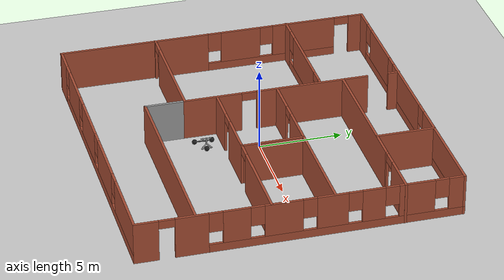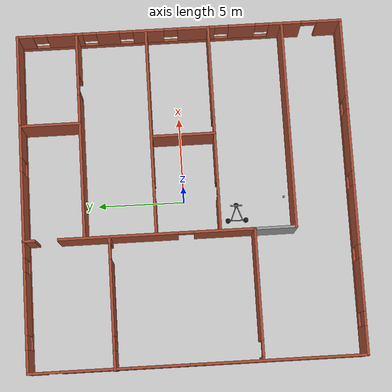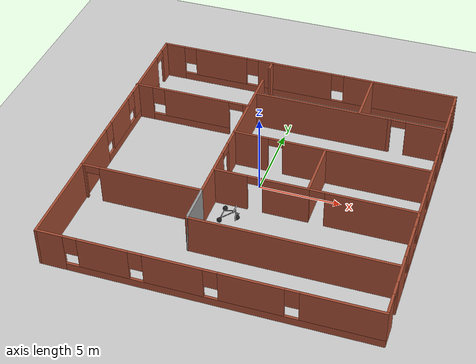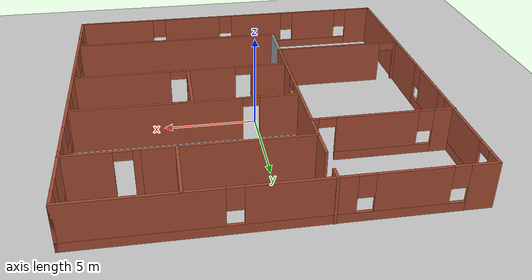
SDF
<sdf version="1.7">
 <world name="default">
  <model name="ground_plane">
   <static>1</static>
   <link name="link">
    <collision name="collision">
     <geometry><plane><normal>0 0 1</normal><size>100 100</size></plane></geometry>
     <surface>
      <contact><collide_bitmask>65535</collide_bitmask></contact>
      <friction><ode><mu>100</mu><mu2>50</mu2></ode></friction>
     </surface>
    </collision>
    <visual name="visual">
     <cast_shadows>0</cast_shadows>
     <geometry><plane><normal>0 0 1</normal><size>100 100</size></plane></geometry>
     <material>
      <script><uri>file://media/materials/scripts/gazebo.material</uri><name>Gazebo/Grey</name></script>
     </material>
    </visual>
   </link>
  </model>
  <model name="Robo_house">
   <pose>0.166 -0.2695 0 0 -0 0</pose>
   <link name="Wall_15">
    <pose>0.017 -9.4375 0 0 -0 0</pose>
    <visual name="Wall_15_Visual_0">
     <pose>-8.91507 0 1.25 0 -0 0</pose>
     <geometry><box><size>1.66987 0.15 2.5</size></box></geometry>
     <material>
      <script><uri>file://media/materials/scripts/gazebo.material</uri><name>Gazebo/Bricks</name></script>
      <ambient>1 1 1 1</ambient>
     </material>
     <meta><layer>0</layer></meta>
    </visual>
    <collision name="Wall_15_Collision_0">
     <geometry><box><size>1.66987 0.15 2.5</size></box></geometry>
     <pose>-8.91507 0 1.25 0 -0 0</pose>
    </collision>
    <visual name="Wall_15_Visual_1">
     <pose>0.834934 0 0.25 0 -0 0</pose>
     <geometry><box><size>17.8301 0.15 0.5</size></box></geometry>
     <material>
      <script><uri>file://media/materials/scripts/gazebo.material</uri><name>Gazebo/Bricks</name></script>
      <ambient>1 1 1 1</ambient>
     </material>
     <meta><layer>0</layer></meta>
    </visual>
    <collision name="Wall_15_Collision_1">
     <geometry><box><size>17.8301 0.15 0.5</size></box></geometry>
     <pose>0.834934 0 0.25 0 -0 0</pose>
    </collision>
    <visual name="Wall_15_Visual_2">
     <pose>-5.79807 0 1.5 0 -0 0</pose>
     <geometry><box><size>2.96413 0.15 2</size></box></geometry>
     <material>
      <script><uri>file://media/materials/scripts/gazebo.material</uri><name>Gazebo/Bricks</name></script>
      <ambient>1 1 1 1</ambient>
     </material>
     <meta><layer>0</layer></meta>
    </visual>
    <collision name="Wall_15_Collision_2">
     <geometry><box><size>2.96413 0.15 2</size></box></geometry>
     <pose>-5.79807 0 1.5 0 -0 0</pose>
    </collision>
    <visual name="Wall_15_Visual_3">
     <pose>-1.80528 0 1.5 0 -0 0</pose>
     <geometry><box><size>3.42145 0.15 2</size></box></geometry>
     <material>
      <script><uri>file://media/materials/scripts/gazebo.material</uri><name>Gazebo/Bricks</name></script>
      <ambient>1 1 1 1</ambient>
     </material>
     <meta><layer>0</layer></meta>
    </visual>
    <collision name="Wall_15_Collision_3">
     <geometry><box><size>3.42145 0.15 2</size></box></geometry>
     <pose>-1.80528 0 1.5 0 -0 0</pose>
    </collision>
    <visual name="Wall_15_Visual_4">
     <pose>2.52171 0 1.5 0 -0 0</pose>
     <geometry><box><size>3.63252 0.15 2</size></box></geometry>
     <material>
      <script><uri>file://media/materials/scripts/gazebo.material</uri><name>Gazebo/Bricks</name></script>
      <ambient>1 1 1 1</ambient>
     </material>
     <meta><layer>0</layer></meta>
    </visual>
    <collision name="Wall_15_Collision_4">
     <geometry><box><size>3.63252 0.15 2</size></box></geometry>
     <pose>2.52171 0 1.5 0 -0 0</pose>
    </collision>
    <visual name="Wall_15_Visual_5">
     <pose>7.44398 0 1.5 0 -0 0</pose>
     <geometry><box><size>4.61203 0.15 2</size></box></geometry>
     <material>
      <script><uri>file://media/materials/scripts/gazebo.material</uri><name>Gazebo/Bricks</name></script>
      <ambient>1 1 1 1</ambient>
     </material>
     <meta><layer>0</layer></meta>
    </visual>
    <collision name="Wall_15_Collision_5">
     <geometry><box><size>4.61203 0.15 2</size></box></geometry>
     <pose>7.44398 0 1.5 0 -0 0</pose>
    </collision>
    <visual name="Wall_15_Visual_6">
     <pose>-7.68013 0 1.9 0 -0 0</pose>
     <geometry><box><size>0.8 0.15 1.2</size></box></geometry>
     <material>
      <script><uri>file://media/materials/scripts/gazebo.material</uri><name>Gazebo/Bricks</name></script>
      <ambient>1 1 1 1</ambient>
     </material>
     <meta><layer>0</layer></meta>
    </visual>
    <collision name="Wall_15_Collision_6">
     <geometry><box><size>0.8 0.15 1.2</size></box></geometry>
     <pose>-7.68013 0 1.9 0 -0 0</pose>
    </collision>
    <visual name="Wall_15_Visual_7">
     <pose>-3.91601 0 1.9 0 -0 0</pose>
     <geometry><box><size>0.8 0.15 1.2</size></box></geometry>
     <material>
      <script><uri>file://media/materials/scripts/gazebo.material</uri><name>Gazebo/Bricks</name></script>
      <ambient>1 1 1 1</ambient>
     </material>
     <meta><layer>0</layer></meta>
    </visual>
    <collision name="Wall_15_Collision_7">
     <geometry><box><size>0.8 0.15 1.2</size></box></geometry>
     <pose>-3.91601 0 1.9 0 -0 0</pose>
    </collision>
    <visual name="Wall_15_Visual_8">
     <pose>0.305447 0 1.9 0 -0 0</pose>
     <geometry><box><size>0.8 0.15 1.2</size></box></geometry>
     <material>
      <script><uri>file://media/materials/scripts/gazebo.material</uri><name>Gazebo/Bricks</name></script>
      <ambient>1 1 1 1</ambient>
     </material>
     <meta><layer>0</layer></meta>
    </visual>
    <collision name="Wall_15_Collision_8">
     <geometry><box><size>0.8 0.15 1.2</size></box></geometry>
     <pose>0.305447 0 1.9 0 -0 0</pose>
    </collision>
    <visual name="Wall_15_Visual_9">
     <pose>4.73797 0 1.9 0 -0 0</pose>
     <geometry><box><size>0.8 0.15 1.2</size></box></geometry>
     <material>
      <script><uri>file://media/materials/scripts/gazebo.material</uri><name>Gazebo/Bricks</name></script>
      <ambient>1 1 1 1</ambient>
     </material>
     <meta><layer>0</layer></meta>
    </visual>
    <collision name="Wall_15_Collision_9">
     <geometry><box><size>0.8 0.15 1.2</size></box></geometry>
     <pose>4.73797 0 1.9 0 -0 0</pose>
    </collision>
   </link>
   <link name="Wall_16">
    <pose>9.692 -0.0125 0 0 -0 1.5708</pose>
    <visual name="Wall_16_Visual_0">
     <pose>-8.77922 0 1.25 0 -0 0</pose>
     <geometry><box><size>1.44155 0.15 2.5</size></box></geometry>
     <material>
      <script><uri>file://media/materials/scripts/gazebo.material</uri><name>Gazebo/Bricks</name></script>
      <ambient>1 1 1 1</ambient>
     </material>
     <meta><layer>0</layer></meta>
    </visual>
    <collision name="Wall_16_Collision_0">
     <geometry><box><size>1.44155 0.15 2.5</size></box></geometry>
     <pose>-8.77922 0 1.25 0 -0 0</pose>
    </collision>
    <visual name="Wall_16_Visual_1">
     <pose>-6.20712 0 1.25 0 -0 0</pose>
     <geometry><box><size>1.90264 0.15 2.5</size></box></geometry>
     <material>
      <script><uri>file://media/materials/scripts/gazebo.material</uri><name>Gazebo/Bricks</name></script>
      <ambient>1 1 1 1</ambient>
     </material>
     <meta><layer>0</layer></meta>
    </visual>
    <collision name="Wall_16_Collision_1">
     <geometry><box><size>1.90264 0.15 2.5</size></box></geometry>
     <pose>-6.20712 0 1.25 0 -0 0</pose>
    </collision>
    <visual name="Wall_16_Visual_2">
     <pose>2.1221 0 0.25 0 -0 0</pose>
     <geometry><box><size>14.7558 0.15 0.5</size></box></geometry>
     <material>
      <script><uri>file://media/materials/scripts/gazebo.material</uri><name>Gazebo/Bricks</name></script>
      <ambient>1 1 1 1</ambient>
     </material>
     <meta><layer>0</layer></meta>
    </visual>
    <collision name="Wall_16_Collision_2">
     <geometry><box><size>14.7558 0.15 0.5</size></box></geometry>
     <pose>2.1221 0 0.25 0 -0 0</pose>
    </collision>
    <visual name="Wall_16_Visual_3">
     <pose>-3.67427 0 1.5 0 -0 0</pose>
     <geometry><box><size>1.56306 0.15 2</size></box></geometry>
     <material>
      <script><uri>file://media/materials/scripts/gazebo.material</uri><name>Gazebo/Bricks</name></script>
      <ambient>1 1 1 1</ambient>
     </material>
     <meta><layer>0</layer></meta>
    </visual>
    <collision name="Wall_16_Collision_3">
     <geometry><box><size>1.56306 0.15 2</size></box></geometry>
     <pose>-3.67427 0 1.5 0 -0 0</pose>
    </collision>
    <visual name="Wall_16_Visual_4">
     <pose>-1.00069 0 1.5 0 -0 0</pose>
     <geometry><box><size>2.18411 0.15 2</size></box></geometry>
     <material>
      <script><uri>file://media/materials/scripts/gazebo.material</uri><name>Gazebo/Bricks</name></script>
      <ambient>1 1 1 1</ambient>
     </material>
     <meta><layer>0</layer></meta>
    </visual>
    <collision name="Wall_16_Collision_4">
     <geometry><box><size>2.18411 0.15 2</size></box></geometry>
     <pose>-1.00069 0 1.5 0 -0 0</pose>
    </collision>
    <visual name="Wall_16_Visual_5">
     <pose>1.79027 0 1.5 0 -0 0</pose>
     <geometry><box><size>1.79781 0.15 2</size></box></geometry>
     <material>
      <script><uri>file://media/materials/scripts/gazebo.material</uri><name>Gazebo/Bricks</name></script>
      <ambient>1 1 1 1</ambient>
     </material>
     <meta><layer>0</layer></meta>
    </visual>
    <collision name="Wall_16_Collision_5">
     <geometry><box><size>1.79781 0.15 2</size></box></geometry>
     <pose>1.79027 0 1.5 0 -0 0</pose>
    </collision>
    <visual name="Wall_16_Visual_6">
     <pose>4.15524 0 1.5 0 -0 0</pose>
     <geometry><box><size>1.33214 0.15 2</size></box></geometry>
     <material>
      <script><uri>file://media/materials/scripts/gazebo.material</uri><name>Gazebo/Bricks</name></script>
      <ambient>1 1 1 1</ambient>
     </material>
     <meta><layer>0</layer></meta>
    </visual>
    <collision name="Wall_16_Collision_6">
     <geometry><box><size>1.33214 0.15 2</size></box></geometry>
     <pose>4.15524 0 1.5 0 -0 0</pose>
    </collision>
    <visual name="Wall_16_Visual_7">
     <pose>6.66355 0 1.5 0 -0 0</pose>
     <geometry><box><size>2.08446 0.15 2</size></box></geometry>
     <material>
      <script><uri>file://media/materials/scripts/gazebo.material</uri><name>Gazebo/Bricks</name></script>
      <ambient>1 1 1 1</ambient>
     </material>
     <meta><layer>0</layer></meta>
    </visual>
    <collision name="Wall_16_Collision_7">
     <geometry><box><size>2.08446 0.15 2</size></box></geometry>
     <pose>6.66355 0 1.5 0 -0 0</pose>
    </collision>
    <visual name="Wall_16_Visual_8">
     <pose>9.00289 0 1.5 0 -0 0</pose>
     <geometry><box><size>0.99422 0.15 2</size></box></geometry>
     <material>
      <script><uri>file://media/materials/scripts/gazebo.material</uri><name>Gazebo/Bricks</name></script>
      <ambient>1 1 1 1</ambient>
     </material>
     <meta><layer>0</layer></meta>
    </visual>
    <collision name="Wall_16_Collision_8">
     <geometry><box><size>0.99422 0.15 2</size></box></geometry>
     <pose>9.00289 0 1.5 0 -0 0</pose>
    </collision>
    <visual name="Wall_16_Visual_9">
     <pose>-4.8558 0 1.9 0 -0 0</pose>
     <geometry><box><size>0.8 0.15 1.2</size></box></geometry>
     <material>
      <script><uri>file://media/materials/scripts/gazebo.material</uri><name>Gazebo/Bricks</name></script>
      <ambient>1 1 1 1</ambient>
     </material>
     <meta><layer>0</layer></meta>
    </visual>
    <collision name="Wall_16_Collision_9">
     <geometry><box><size>0.8 0.15 1.2</size></box></geometry>
     <pose>-4.8558 0 1.9 0 -0 0</pose>
    </collision>
    <visual name="Wall_16_Visual_10">
     <pose>-2.49274 0 1.9 0 -0 0</pose>
     <geometry><box><size>0.8 0.15 1.2</size></box></geometry>
     <material>
      <script><uri>file://media/materials/scripts/gazebo.material</uri><name>Gazebo/Bricks</name></script>
      <ambient>1 1 1 1</ambient>
     </material>
     <meta><layer>0</layer></meta>
    </visual>
    <collision name="Wall_16_Collision_10">
     <geometry><box><size>0.8 0.15 1.2</size></box></geometry>
     <pose>-2.49274 0 1.9 0 -0 0</pose>
    </collision>
    <visual name="Wall_16_Visual_11">
     <pose>0.491371 0 1.9 0 -0 0</pose>
     <geometry><box><size>0.8 0.15 1.2</size></box></geometry>
     <material>
      <script><uri>file://media/materials/scripts/gazebo.material</uri><name>Gazebo/Bricks</name></script>
      <ambient>1 1 1 1</ambient>
     </material>
     <meta><layer>0</layer></meta>
    </visual>
    <collision name="Wall_16_Collision_11">
     <geometry><box><size>0.8 0.15 1.2</size></box></geometry>
     <pose>0.491371 0 1.9 0 -0 0</pose>
    </collision>
    <visual name="Wall_16_Visual_12">
     <pose>3.08918 0 1.9 0 -0 0</pose>
     <geometry><box><size>0.8 0.15 1.2</size></box></geometry>
     <material>
      <script><uri>file://media/materials/scripts/gazebo.material</uri><name>Gazebo/Bricks</name></script>
      <ambient>1 1 1 1</ambient>
     </material>
     <meta><layer>0</layer></meta>
    </visual>
    <collision name="Wall_16_Collision_12">
     <geometry><box><size>0.8 0.15 1.2</size></box></geometry>
     <pose>3.08918 0 1.9 0 -0 0</pose>
    </collision>
    <visual name="Wall_16_Visual_13">
     <pose>5.22131 0 1.9 0 -0 0</pose>
     <geometry><box><size>0.8 0.15 1.2</size></box></geometry>
     <material>
      <script><uri>file://media/materials/scripts/gazebo.material</uri><name>Gazebo/Bricks</name></script>
      <ambient>1 1 1 1</ambient>
     </material>
     <meta><layer>0</layer></meta>
    </visual>
    <collision name="Wall_16_Collision_13">
     <geometry><box><size>0.8 0.15 1.2</size></box></geometry>
     <pose>5.22131 0 1.9 0 -0 0</pose>
    </collision>
    <visual name="Wall_16_Visual_14">
     <pose>8.10578 0 1.9 0 -0 0</pose>
     <geometry><box><size>0.8 0.15 1.2</size></box></geometry>
     <material>
      <script><uri>file://media/materials/scripts/gazebo.material</uri><name>Gazebo/Bricks</name></script>
      <ambient>1 1 1 1</ambient>
     </material>
     <meta><layer>0</layer></meta>
    </visual>
    <collision name="Wall_16_Collision_14">
     <geometry><box><size>0.8 0.15 1.2</size></box></geometry>
     <pose>8.10578 0 1.9 0 -0 0</pose>
    </collision>
    <visual name="Wall_16_Visual_15">
     <pose>-7.60845 0 2.25 0 -0 0</pose>
     <geometry><box><size>0.9 0.15 0.5</size></box></geometry>
     <material>
      <script><uri>file://media/materials/scripts/gazebo.material</uri><name>Gazebo/Bricks</name></script>
      <ambient>1 1 1 1</ambient>
     </material>
     <meta><layer>0</layer></meta>
    </visual>
    <collision name="Wall_16_Collision_15">
     <geometry><box><size>0.9 0.15 0.5</size></box></geometry>
     <pose>-7.60845 0 2.25 0 -0 0</pose>
    </collision>
   </link>
   <link name="Wall_20">
    <pose>-9.658 -0.0125 0 0 -0 1.5708</pose>
    <visual name="Wall_20_Visual_0">
     <pose>-4.92846 0 1.25 0 -0 0</pose>
     <geometry><box><size>9.14308 0.15 2.5</size></box></geometry>
     <material>
      <script><uri>file://media/materials/scripts/gazebo.material</uri><name>Gazebo/Bricks</name></script>
      <ambient>1 1 1 1</ambient>
     </material>
     <meta><layer>0</layer></meta>
    </visual>
    <collision name="Wall_20_Collision_0">
     <geometry><box><size>9.14308 0.15 2.5</size></box></geometry>
     <pose>-4.92846 0 1.25 0 -0 0</pose>
    </collision>
    <visual name="Wall_20_Visual_1">
     <pose>9.02608 0 1.25 0 -0 0</pose>
     <geometry><box><size>0.947833 0.15 2.5</size></box></geometry>
     <material>
      <script><uri>file://media/materials/scripts/gazebo.material</uri><name>Gazebo/Bricks</name></script>
      <ambient>1 1 1 1</ambient>
     </material>
     <meta><layer>0</layer></meta>
    </visual>
    <collision name="Wall_20_Collision_1">
     <geometry><box><size>0.947833 0.15 2.5</size></box></geometry>
     <pose>9.02608 0 1.25 0 -0 0</pose>
    </collision>
    <visual name="Wall_20_Visual_2">
     <pose>3.64762 0 0.25 0 -0 0</pose>
     <geometry><box><size>8.00909 0.15 0.5</size></box></geometry>
     <material>
      <script><uri>file://media/materials/scripts/gazebo.material</uri><name>Gazebo/Bricks</name></script>
      <ambient>1 1 1 1</ambient>
     </material>
     <meta><layer>0</layer></meta>
    </visual>
    <collision name="Wall_20_Collision_2">
     <geometry><box><size>8.00909 0.15 0.5</size></box></geometry>
     <pose>3.64762 0 0.25 0 -0 0</pose>
    </collision>
    <visual name="Wall_20_Visual_3">
     <pose>1.67438 0 1.5 0 -0 0</pose>
     <geometry><box><size>2.46259 0.15 2</size></box></geometry>
     <material>
      <script><uri>file://media/materials/scripts/gazebo.material</uri><name>Gazebo/Bricks</name></script>
      <ambient>1 1 1 1</ambient>
     </material>
     <meta><layer>0</layer></meta>
    </visual>
    <collision name="Wall_20_Collision_3">
     <geometry><box><size>2.46259 0.15 2</size></box></geometry>
     <pose>1.67438 0 1.5 0 -0 0</pose>
    </collision>
    <visual name="Wall_20_Visual_4">
     <pose>5.67892 0 1.5 0 -0 0</pose>
     <geometry><box><size>3.9465 0.15 2</size></box></geometry>
     <material>
      <script><uri>file://media/materials/scripts/gazebo.material</uri><name>Gazebo/Bricks</name></script>
      <ambient>1 1 1 1</ambient>
     </material>
     <meta><layer>0</layer></meta>
    </visual>
    <collision name="Wall_20_Collision_4">
     <geometry><box><size>3.9465 0.15 2</size></box></geometry>
     <pose>5.67892 0 1.5 0 -0 0</pose>
    </collision>
    <visual name="Wall_20_Visual_5">
     <pose>0.04308 0 1.9 0 -0 0</pose>
     <geometry><box><size>0.8 0.15 1.2</size></box></geometry>
     <material>
      <script><uri>file://media/materials/scripts/gazebo.material</uri><name>Gazebo/Bricks</name></script>
      <ambient>1 1 1 1</ambient>
     </material>
     <meta><layer>0</layer></meta>
    </visual>
    <collision name="Wall_20_Collision_5">
     <geometry><box><size>0.8 0.15 1.2</size></box></geometry>
     <pose>0.04308 0 1.9 0 -0 0</pose>
    </collision>
    <visual name="Wall_20_Visual_6">
     <pose>3.30567 0 1.9 0 -0 0</pose>
     <geometry><box><size>0.8 0.15 1.2</size></box></geometry>
     <material>
      <script><uri>file://media/materials/scripts/gazebo.material</uri><name>Gazebo/Bricks</name></script>
      <ambient>1 1 1 1</ambient>
     </material>
     <meta><layer>0</layer></meta>
    </visual>
    <collision name="Wall_20_Collision_6">
     <geometry><box><size>0.8 0.15 1.2</size></box></geometry>
     <pose>3.30567 0 1.9 0 -0 0</pose>
    </collision>
    <visual name="Wall_20_Visual_7">
     <pose>8.10217 0 2.25 0 -0 0</pose>
     <geometry><box><size>0.9 0.15 0.5</size></box></geometry>
     <material>
      <script><uri>file://media/materials/scripts/gazebo.material</uri><name>Gazebo/Bricks</name></script>
      <ambient>1 1 1 1</ambient>
     </material>
     <meta><layer>0</layer></meta>
    </visual>
    <collision name="Wall_20_Collision_7">
     <geometry><box><size>0.9 0.15 0.5</size></box></geometry>
     <pose>8.10217 0 2.25 0 -0 0</pose>
    </collision>
   </link>
   <link name="Wall_21">
    <pose>0.017 9.4125 0 0 -0 0</pose>
    <visual name="Wall_21_Visual_0">
     <pose>-9.05411 0 1.25 0 -0 0</pose>
     <geometry><box><size>1.39177 0.15 2.5</size></box></geometry>
     <material>
      <script><uri>file://media/materials/scripts/gazebo.material</uri><name>Gazebo/Bricks</name></script>
      <ambient>1 1 1 1</ambient>
     </material>
     <meta><layer>0</layer></meta>
    </visual>
    <collision name="Wall_21_Collision_0">
     <geometry><box><size>1.39177 0.15 2.5</size></box></geometry>
     <pose>-9.05411 0 1.25 0 -0 0</pose>
    </collision>
    <visual name="Wall_21_Visual_1">
     <pose>0.695886 0 0.25 0 -0 0</pose>
     <geometry><box><size>18.1082 0.15 0.5</size></box></geometry>
     <material>
      <script><uri>file://media/materials/scripts/gazebo.material</uri><name>Gazebo/Bricks</name></script>
      <ambient>1 1 1 1</ambient>
     </material>
     <meta><layer>0</layer></meta>
    </visual>
    <collision name="Wall_21_Collision_1">
     <geometry><box><size>18.1082 0.15 0.5</size></box></geometry>
     <pose>0.695886 0 0.25 0 -0 0</pose>
    </collision>
    <visual name="Wall_21_Visual_2">
     <pose>-5.79711 0 1.5 0 -0 0</pose>
     <geometry><box><size>3.52224 0.15 2</size></box></geometry>
     <material>
      <script><uri>file://media/materials/scripts/gazebo.material</uri><name>Gazebo/Bricks</name></script>
      <ambient>1 1 1 1</ambient>
     </material>
     <meta><layer>0</layer></meta>
    </visual>
    <collision name="Wall_21_Collision_2">
     <geometry><box><size>3.52224 0.15 2</size></box></geometry>
     <pose>-5.79711 0 1.5 0 -0 0</pose>
    </collision>
    <visual name="Wall_21_Visual_3">
     <pose>-0.763639 0 1.5 0 -0 0</pose>
     <geometry><box><size>4.94469 0.15 2</size></box></geometry>
     <material>
      <script><uri>file://media/materials/scripts/gazebo.material</uri><name>Gazebo/Bricks</name></script>
      <ambient>1 1 1 1</ambient>
     </material>
     <meta><layer>0</layer></meta>
    </visual>
    <collision name="Wall_21_Collision_3">
     <geometry><box><size>4.94469 0.15 2</size></box></geometry>
     <pose>-0.763639 0 1.5 0 -0 0</pose>
    </collision>
    <visual name="Wall_21_Visual_4">
     <pose>6.12935 0 1.5 0 -0 0</pose>
     <geometry><box><size>7.24129 0.15 2</size></box></geometry>
     <material>
      <script><uri>file://media/materials/scripts/gazebo.material</uri><name>Gazebo/Bricks</name></script>
      <ambient>1 1 1 1</ambient>
     </material>
     <meta><layer>0</layer></meta>
    </visual>
    <collision name="Wall_21_Collision_4">
     <geometry><box><size>7.24129 0.15 2</size></box></geometry>
     <pose>6.12935 0 1.5 0 -0 0</pose>
    </collision>
    <visual name="Wall_21_Visual_5">
     <pose>-7.95823 0 1.9 0 -0 0</pose>
     <geometry><box><size>0.8 0.15 1.2</size></box></geometry>
     <material>
      <script><uri>file://media/materials/scripts/gazebo.material</uri><name>Gazebo/Bricks</name></script>
      <ambient>1 1 1 1</ambient>
     </material>
     <meta><layer>0</layer></meta>
    </visual>
    <collision name="Wall_21_Collision_5">
     <geometry><box><size>0.8 0.15 1.2</size></box></geometry>
     <pose>-7.95823 0 1.9 0 -0 0</pose>
    </collision>
    <visual name="Wall_21_Visual_6">
     <pose>-3.63598 0 1.9 0 -0 0</pose>
     <geometry><box><size>0.8 0.15 1.2</size></box></geometry>
     <material>
      <script><uri>file://media/materials/scripts/gazebo.material</uri><name>Gazebo/Bricks</name></script>
      <ambient>1 1 1 1</ambient>
     </material>
     <meta><layer>0</layer></meta>
    </visual>
    <collision name="Wall_21_Collision_6">
     <geometry><box><size>0.8 0.15 1.2</size></box></geometry>
     <pose>-3.63598 0 1.9 0 -0 0</pose>
    </collision>
    <visual name="Wall_21_Visual_7">
     <pose>2.10871 0 1.9 0 -0 0</pose>
     <geometry><box><size>0.8 0.15 1.2</size></box></geometry>
     <material>
      <script><uri>file://media/materials/scripts/gazebo.material</uri><name>Gazebo/Bricks</name></script>
      <ambient>1 1 1 1</ambient>
     </material>
     <meta><layer>0</layer></meta>
    </visual>
    <collision name="Wall_21_Collision_7">
     <geometry><box><size>0.8 0.15 1.2</size></box></geometry>
     <pose>2.10871 0 1.9 0 -0 0</pose>
    </collision>
   </link>
   <link name="Wall_23">
    <pose>-5.961 -3.6535 0 0 -0 0</pose>
    <visual name="Wall_23_Visual_0">
     <pose>-3.62205 0 1.25 0 -0 0</pose>
     <geometry><box><size>0.255896 0.15 2.5</size></box></geometry>
     <material>
      <script><uri>file://media/materials/scripts/gazebo.material</uri><name>Gazebo/Bricks</name></script>
      <ambient>1 1 1 1</ambient>
     </material>
     <meta><layer>0</layer></meta>
    </visual>
    <collision name="Wall_23_Collision_0">
     <geometry><box><size>0.255896 0.15 2.5</size></box></geometry>
     <pose>-3.62205 0 1.25 0 -0 0</pose>
    </collision>
    <visual name="Wall_23_Visual_1">
     <pose>0.577948 0 1.25 0 -0 0</pose>
     <geometry><box><size>6.3441 0.15 2.5</size></box></geometry>
     <material>
      <script><uri>file://media/materials/scripts/gazebo.material</uri><name>Gazebo/Bricks</name></script>
      <ambient>1 1 1 1</ambient>
     </material>
     <meta><layer>0</layer></meta>
    </visual>
    <collision name="Wall_23_Collision_1">
     <geometry><box><size>6.3441 0.15 2.5</size></box></geometry>
     <pose>0.577948 0 1.25 0 -0 0</pose>
    </collision>
    <visual name="Wall_23_Visual_2">
     <pose>-3.0441 0 2.25 0 -0 0</pose>
     <geometry><box><size>0.9 0.15 0.5</size></box></geometry>
     <material>
      <script><uri>file://media/materials/scripts/gazebo.material</uri><name>Gazebo/Bricks</name></script>
      <ambient>1 1 1 1</ambient>
     </material>
     <meta><layer>0</layer></meta>
    </visual>
    <collision name="Wall_23_Collision_2">
     <geometry><box><size>0.9 0.15 0.5</size></box></geometry>
     <pose>-3.0441 0 2.25 0 -0 0</pose>
    </collision>
   </link>
   <link name="Wall_24">
    <collision name="Wall_24_Collision">
     <geometry><box><size>2.5 0.15 2.5</size></box></geometry>
     <pose>0 0 1.25 0 -0 0</pose>
    </collision>
    <visual name="Wall_24_Visual">
     <pose>0 0 1.25 0 -0 0</pose>
     <geometry><box><size>2.5 0.15 2.5</size></box></geometry>
     <material>
      <script><uri>file://media/materials/scripts/gazebo.material</uri><name>Gazebo/Grey</name></script>
      <ambient>1 1 1 1</ambient>
     </material>
     <meta><layer>0</layer></meta>
    </visual>
    <pose>-2.286 -4.8285 0 0 -0 -1.5708</pose>
   </link>
   <link name="Wall_25">
    <collision name="Wall_25_Collision">
     <geometry><box><size>12 0.15 2.5</size></box></geometry>
     <pose>0 0 1.25 0 -0 0</pose>
    </collision>
    <visual name="Wall_25_Visual">
     <pose>0 0 1.25 0 -0 0</pose>
     <geometry><box><size>12 0.15 2.5</size></box></geometry>
     <material>
      <script><uri>file://media/materials/scripts/gazebo.material</uri><name>Gazebo/Bricks</name></script>
      <ambient>1 1 1 1</ambient>
     </material>
     <meta><layer>0</layer></meta>
    </visual>
    <pose>3.639 -6.0035 0 0 -0 0</pose>
   </link>
   <link name="Wall_34">
    <pose>7.902 5.9825 0 0 -0 0</pose>
    <visual name="Wall_34_Visual_0">
     <pose>-1.6939 0 1.25 0 -0 0</pose>
     <geometry><box><size>0.362205 0.15 2.5</size></box></geometry>
     <material>
      <script><uri>file://media/materials/scripts/gazebo.material</uri><name>Gazebo/Bricks</name></script>
      <ambient>1 1 1 1</ambient>
     </material>
     <meta><layer>0</layer></meta>
    </visual>
    <collision name="Wall_34_Collision_0">
     <geometry><box><size>0.362205 0.15 2.5</size></box></geometry>
     <pose>-1.6939 0 1.25 0 -0 0</pose>
    </collision>
    <visual name="Wall_34_Visual_1">
     <pose>0.631102 0 1.25 0 -0 0</pose>
     <geometry><box><size>2.4878 0.15 2.5</size></box></geometry>
     <material>
      <script><uri>file://media/materials/scripts/gazebo.material</uri><name>Gazebo/Bricks</name></script>
      <ambient>1 1 1 1</ambient>
     </material>
     <meta><layer>0</layer></meta>
    </visual>
    <collision name="Wall_34_Collision_1">
     <geometry><box><size>2.4878 0.15 2.5</size></box></geometry>
     <pose>0.631102 0 1.25 0 -0 0</pose>
    </collision>
    <visual name="Wall_34_Visual_2">
     <pose>-1.06279 0 2.25 0 -0 0</pose>
     <geometry><box><size>0.9 0.15 0.5</size></box></geometry>
     <material>
      <script><uri>file://media/materials/scripts/gazebo.material</uri><name>Gazebo/Bricks</name></script>
      <ambient>1 1 1 1</ambient>
     </material>
     <meta><layer>0</layer></meta>
    </visual>
    <collision name="Wall_34_Collision_2">
     <geometry><box><size>0.9 0.15 0.5</size></box></geometry>
     <pose>-1.06279 0 2.25 0 -0 0</pose>
    </collision>
   </link>
   <link name="Wall_36">
    <pose>-2.286 1.8965 0 0 -0 1.5708</pose>
    <visual name="Wall_36_Visual_0">
     <pose>-3.87113 0 1.25 0 -0 0</pose>
     <geometry><box><size>3.50774 0.15 2.5</size></box></geometry>
     <material>
      <script><uri>file://media/materials/scripts/gazebo.material</uri><name>Gazebo/Bricks</name></script>
      <ambient>1 1 1 1</ambient>
     </material>
     <meta><layer>0</layer></meta>
    </visual>
    <collision name="Wall_36_Collision_0">
     <geometry><box><size>3.50774 0.15 2.5</size></box></geometry>
     <pose>-3.87113 0 1.25 0 -0 0</pose>
    </collision>
    <visual name="Wall_36_Visual_1">
     <pose>2.20387 0 1.25 0 -0 0</pose>
     <geometry><box><size>6.84226 0.15 2.5</size></box></geometry>
     <material>
      <script><uri>file://media/materials/scripts/gazebo.material</uri><name>Gazebo/Bricks</name></script>
      <ambient>1 1 1 1</ambient>
     </material>
     <meta><layer>0</layer></meta>
    </visual>
    <collision name="Wall_36_Collision_1">
     <geometry><box><size>6.84226 0.15 2.5</size></box></geometry>
     <pose>2.20387 0 1.25 0 -0 0</pose>
    </collision>
    <visual name="Wall_36_Visual_2">
     <pose>-1.66726 0 2.25 0 -0 0</pose>
     <geometry><box><size>0.9 0.15 0.5</size></box></geometry>
     <material>
      <script><uri>file://media/materials/scripts/gazebo.material</uri><name>Gazebo/Bricks</name></script>
      <ambient>1 1 1 1</ambient>
     </material>
     <meta><layer>0</layer></meta>
    </visual>
    <collision name="Wall_36_Collision_2">
     <geometry><box><size>0.9 0.15 0.5</size></box></geometry>
     <pose>-1.66726 0 2.25 0 -0 0</pose>
    </collision>
   </link>
   <link name="Wall_38">
    <collision name="Wall_38_Collision">
     <geometry><box><size>8.5 0.15 2.5</size></box></geometry>
     <pose>0 0 1.25 0 -0 0</pose>
    </collision>
    <visual name="Wall_38_Visual">
     <pose>0 0 1.25 0 -0 0</pose>
     <geometry><box><size>8.5 0.15 2.5</size></box></geometry>
     <material>
      <script><uri>file://media/materials/scripts/gazebo.material</uri><name>Gazebo/Bricks</name></script>
      <ambient>1 1 1 1</ambient>
     </material>
     <meta><layer>0</layer></meta>
    </visual>
    <pose>1.927 5.9825 0 0 -0 3.14159</pose>
   </link>
   <link name="Wall_44">
    <collision name="Wall_44_Collision">
     <geometry><box><size>0.75 0.15 2.5</size></box></geometry>
     <pose>0 0 1.25 0 -0 0</pose>
    </collision>
    <visual name="Wall_44_Visual">
     <pose>0 0 1.25 0 -0 0</pose>
     <geometry><box><size>0.75 0.15 2.5</size></box></geometry>
     <material>
      <script><uri>file://media/materials/scripts/gazebo.material</uri><name>Gazebo/Bricks</name></script>
      <ambient>1 1 1 1</ambient>
     </material>
     <meta><layer>0</layer></meta>
    </visual>
    <pose>-2.281 9.1375 0 0 -0 -1.5708</pose>
   </link>
   <link name="Wall_46">
    <pose>3.659 1.9305 0 0 -0 0</pose>
    <visual name="Wall_46_Visual_0">
     <pose>-4.90616 0 1.25 0 -0 0</pose>
     <geometry><box><size>2.18769 0.15 2.5</size></box></geometry>
     <material>
      <script><uri>file://media/materials/scripts/gazebo.material</uri><name>Gazebo/Bricks</name></script>
      <ambient>1 1 1 1</ambient>
     </material>
     <meta><layer>0</layer></meta>
    </visual>
    <collision name="Wall_46_Collision_0">
     <geometry><box><size>2.18769 0.15 2.5</size></box></geometry>
     <pose>-4.90616 0 1.25 0 -0 0</pose>
    </collision>
    <visual name="Wall_46_Visual_1">
     <pose>1.54384 0 1.25 0 -0 0</pose>
     <geometry><box><size>8.91231 0.15 2.5</size></box></geometry>
     <material>
      <script><uri>file://media/materials/scripts/gazebo.material</uri><name>Gazebo/Bricks</name></script>
      <ambient>1 1 1 1</ambient>
     </material>
     <meta><layer>0</layer></meta>
    </visual>
    <collision name="Wall_46_Collision_1">
     <geometry><box><size>8.91231 0.15 2.5</size></box></geometry>
     <pose>1.54384 0 1.25 0 -0 0</pose>
    </collision>
    <visual name="Wall_46_Visual_2">
     <pose>-3.36231 0 2.25 0 -0 0</pose>
     <geometry><box><size>0.9 0.15 0.5</size></box></geometry>
     <material>
      <script><uri>file://media/materials/scripts/gazebo.material</uri><name>Gazebo/Bricks</name></script>
      <ambient>1 1 1 1</ambient>
     </material>
     <meta><layer>0</layer></meta>
    </visual>
    <collision name="Wall_46_Collision_2">
     <geometry><box><size>0.9 0.15 0.5</size></box></geometry>
     <pose>-3.36231 0 2.25 0 -0 0</pose>
    </collision>
   </link>
   <link name="Wall_48">
    <pose>3.74 -1.7145 0 0 -0 0</pose>
    <visual name="Wall_48_Visual_0">
     <pose>-4.99272 0 1.25 0 -0 0</pose>
     <geometry><box><size>2.01456 0.15 2.5</size></box></geometry>
     <material>
      <script><uri>file://media/materials/scripts/gazebo.material</uri><name>Gazebo/Bricks</name></script>
      <ambient>1 1 1 1</ambient>
     </material>
     <meta><layer>0</layer></meta>
    </visual>
    <collision name="Wall_48_Collision_0">
     <geometry><box><size>2.01456 0.15 2.5</size></box></geometry>
     <pose>-4.99272 0 1.25 0 -0 0</pose>
    </collision>
    <visual name="Wall_48_Visual_1">
     <pose>-1.69471 0 1.25 0 -0 0</pose>
     <geometry><box><size>2.78146 0.15 2.5</size></box></geometry>
     <material>
      <script><uri>file://media/materials/scripts/gazebo.material</uri><name>Gazebo/Bricks</name></script>
      <ambient>1 1 1 1</ambient>
     </material>
     <meta><layer>0</layer></meta>
    </visual>
    <collision name="Wall_48_Collision_1">
     <geometry><box><size>2.78146 0.15 2.5</size></box></geometry>
     <pose>-1.69471 0 1.25 0 -0 0</pose>
    </collision>
    <visual name="Wall_48_Visual_2">
     <pose>3.29801 0 1.25 0 -0 0</pose>
     <geometry><box><size>5.40398 0.15 2.5</size></box></geometry>
     <material>
      <script><uri>file://media/materials/scripts/gazebo.material</uri><name>Gazebo/Bricks</name></script>
      <ambient>1 1 1 1</ambient>
     </material>
     <meta><layer>0</layer></meta>
    </visual>
    <collision name="Wall_48_Collision_2">
     <geometry><box><size>5.40398 0.15 2.5</size></box></geometry>
     <pose>3.29801 0 1.25 0 -0 0</pose>
    </collision>
    <visual name="Wall_48_Visual_3">
     <pose>-3.53544 0 2.25 0 -0 0</pose>
     <geometry><box><size>0.9 0.15 0.5</size></box></geometry>
     <material>
      <script><uri>file://media/materials/scripts/gazebo.material</uri><name>Gazebo/Bricks</name></script>
      <ambient>1 1 1 1</ambient>
     </material>
     <meta><layer>0</layer></meta>
    </visual>
    <collision name="Wall_48_Collision_3">
     <geometry><box><size>0.9 0.15 0.5</size></box></geometry>
     <pose>-3.53544 0 2.25 0 -0 0</pose>
    </collision>
    <visual name="Wall_48_Visual_4">
     <pose>0.146022 0 2.25 0 -0 0</pose>
     <geometry><box><size>0.9 0.15 0.5</size></box></geometry>
     <material>
      <script><uri>file://media/materials/scripts/gazebo.material</uri><name>Gazebo/Bricks</name></script>
      <ambient>1 1 1 1</ambient>
     </material>
     <meta><layer>0</layer></meta>
    </visual>
    <collision name="Wall_48_Collision_4">
     <geometry><box><size>0.9 0.15 0.5</size></box></geometry>
     <pose>0.146022 0 2.25 0 -0 0</pose>
    </collision>
   </link>
   <link name="Wall_56">
    <collision name="Wall_56_Collision">
     <geometry><box><size>3.75 0.15 2.5</size></box></geometry>
     <pose>0 0 1.25 0 -0 0</pose>
    </collision>
    <visual name="Wall_56_Visual">
     <pose>0 0 1.25 0 -0 0</pose>
     <geometry><box><size>3.75 0.15 2.5</size></box></geometry>
     <material>
      <script><uri>file://media/materials/scripts/gazebo.material</uri><name>Gazebo/Bricks</name></script>
      <ambient>1 1 1 1</ambient>
     </material>
     <meta><layer>0</layer></meta>
    </visual>
    <pose>3.36 0.0925 0 0 -0 -1.5708</pose>
   </link>
   <link name="Wall_58">
    <collision name="Wall_58_Collision">
     <geometry><box><size>3.5 0.15 2.5</size></box></geometry>
     <pose>0 0 1.25 0 -0 0</pose>
    </collision>
    <visual name="Wall_58_Visual">
     <pose>0 0 1.25 0 -0 0</pose>
     <geometry><box><size>3.5 0.15 2.5</size></box></geometry>
     <material>
      <script><uri>file://media/materials/scripts/gazebo.material</uri><name>Gazebo/Bricks</name></script>
      <ambient>1 1 1 1</ambient>
     </material>
     <meta><layer>0</layer></meta>
    </visual>
    <pose>4.374 7.6945 0 0 -0 -1.5708</pose>
   </link>
   <link name="Wall_60">
    <pose>-6.027 4.5905 0 0 -0 0</pose>
    <visual name="Wall_60_Visual_0">
     <pose>-3.18357 0 1.25 0 -0 0</pose>
     <geometry><box><size>1.13285 0.15 2.5</size></box></geometry>
     <material>
      <script><uri>file://media/materials/scripts/gazebo.material</uri><name>Gazebo/Bricks</name></script>
      <ambient>1 1 1 1</ambient>
     </material>
     <meta><layer>0</layer></meta>
    </visual>
    <collision name="Wall_60_Collision_0">
     <geometry><box><size>1.13285 0.15 2.5</size></box></geometry>
     <pose>-3.18357 0 1.25 0 -0 0</pose>
    </collision>
    <visual name="Wall_60_Visual_1">
     <pose>3.56381 0 1.25 0 -0 0</pose>
     <geometry><box><size>0.372382 0.15 2.5</size></box></geometry>
     <material>
      <script><uri>file://media/materials/scripts/gazebo.material</uri><name>Gazebo/Bricks</name></script>
      <ambient>1 1 1 1</ambient>
     </material>
     <meta><layer>0</layer></meta>
    </visual>
    <collision name="Wall_60_Collision_1">
     <geometry><box><size>0.372382 0.15 2.5</size></box></geometry>
     <pose>3.56381 0 1.25 0 -0 0</pose>
    </collision>
    <visual name="Wall_60_Visual_2">
     <pose>-0.069764 0 0.25 0 -0 0</pose>
     <geometry><box><size>5.09476 0.15 0.5</size></box></geometry>
     <material>
      <script><uri>file://media/materials/scripts/gazebo.material</uri><name>Gazebo/Bricks</name></script>
      <ambient>1 1 1 1</ambient>
     </material>
     <meta><layer>0</layer></meta>
    </visual>
    <collision name="Wall_60_Collision_2">
     <geometry><box><size>5.09476 0.15 0.5</size></box></geometry>
     <pose>-0.069764 0 0.25 0 -0 0</pose>
    </collision>
    <visual name="Wall_60_Visual_3">
     <pose>0.330236 0 1.5 0 -0 0</pose>
     <geometry><box><size>4.29476 0.15 2</size></box></geometry>
     <material>
      <script><uri>file://media/materials/scripts/gazebo.material</uri><name>Gazebo/Bricks</name></script>
      <ambient>1 1 1 1</ambient>
     </material>
     <meta><layer>0</layer></meta>
    </visual>
    <collision name="Wall_60_Collision_3">
     <geometry><box><size>4.29476 0.15 2</size></box></geometry>
     <pose>0.330236 0 1.5 0 -0 0</pose>
    </collision>
    <visual name="Wall_60_Visual_4">
     <pose>-2.21715 0 1.9 0 -0 0</pose>
     <geometry><box><size>0.8 0.15 1.2</size></box></geometry>
     <material>
      <script><uri>file://media/materials/scripts/gazebo.material</uri><name>Gazebo/Bricks</name></script>
      <ambient>1 1 1 1</ambient>
     </material>
     <meta><layer>0</layer></meta>
    </visual>
    <collision name="Wall_60_Collision_4">
     <geometry><box><size>0.8 0.15 1.2</size></box></geometry>
     <pose>-2.21715 0 1.9 0 -0 0</pose>
    </collision>
    <visual name="Wall_60_Visual_5">
     <pose>2.92762 0 2.25 0 -0 0</pose>
     <geometry><box><size>0.9 0.15 0.5</size></box></geometry>
     <material>
      <script><uri>file://media/materials/scripts/gazebo.material</uri><name>Gazebo/Bricks</name></script>
      <ambient>1 1 1 1</ambient>
     </material>
     <meta><layer>0</layer></meta>
    </visual>
    <collision name="Wall_60_Collision_5">
     <geometry><box><size>0.9 0.15 0.5</size></box></geometry>
     <pose>2.92762 0 2.25 0 -0 0</pose>
    </collision>
   </link>
   <static>1</static>
  </model>
  <model name="trisphere_cycle">
   <link name="frame">
    <pose>-0.408559 0 0.385023 0 -0.522021 0</pose>
    <inertial>
     <mass>10</mass>
     <inertia><ixx>0.228</ixx><iyy>0.743521</iyy><izz>0.965521</izz><ixy>0</ixy><ixz>0</ixz><iyz>0</iyz></inertia>
    </inertial>
    <collision name="axle_collision">
     <pose>-0.471335 0 0 1.5708 -0 0</pose>
     <geometry><cylinder><length>1.03923</length><radius>0.03</radius></cylinder></geometry>
    </collision>
    <visual name="axle_visual">
     <pose>-0.471335 0 0 1.5708 -0 0</pose>
     <geometry><cylinder><length>1.03923</length><radius>0.03</radius></cylinder></geometry>
     <material>
      <script><uri>file://media/materials/scripts/gazebo.material</uri><name>Gazebo/Grey</name></script>
     </material>
    </visual>
    <collision name="frame_left_collision">
     <pose>0 0.171552 0 -2.79253 1.57079 3.14159</pose>
     <geometry><cylinder><length>1.00317</length><radius>0.03</radius></cylinder></geometry>
    </collision>
    <visual name="frame_left_visual">
     <pose>0 0.171552 0 -2.79253 1.57079 3.14159</pose>
     <geometry><cylinder><length>1.00317</length><radius>0.03</radius></cylinder></geometry>
     <material>
      <script><uri>file://media/materials/scripts/gazebo.material</uri><name>Gazebo/Grey</name></script>
     </material>
    </visual>
    <collision name="frame_right_collision">
     <pose>0 -0.171552 0 2.79253 1.57079 -3.14159</pose>
     <geometry><cylinder><length>1.00317</length><radius>0.03</radius></cylinder></geometry>
    </collision>
    <visual name="frame_right_visual">
     <pose>0 -0.171552 0 2.79253 1.57079 -3.14159</pose>
     <geometry><cylinder><length>1.00317</length><radius>0.03</radius></cylinder></geometry>
     <material>
      <script><uri>file://media/materials/scripts/gazebo.material</uri><name>Gazebo/Grey</name></script>
     </material>
    </visual>
   </link>
   <link name="fork">
    <pose>0.041441 0 0.385023 0 -0.174533 0</pose>
    <inertial>
     <mass>3</mass>
     <inertia>
      <ixx>0.158203</ixx>
      <iyy>0.0583594</iyy>
      <izz>0.102656</izz>
      <ixy>0</ixy>
      <ixz>0</ixz>
      <iyz>0</iyz>
     </inertia>
    </inertial>
    <collision name="handlebars_collision">
     <pose>0 0 0.397748 1.5708 -0 0</pose>
     <geometry><cylinder><length>0.636396</length><radius>0.0375</radius></cylinder></geometry>
    </collision>
    <visual name="handlebars_visual">
     <pose>0 0 0.397748 1.5708 -0 0</pose>
     <geometry><cylinder><length>0.636396</length><radius>0.0375</radius></cylinder></geometry>
     <material>
      <script><uri>file://media/materials/scripts/gazebo.material</uri><name>Gazebo/Grey</name></script>
     </material>
    </visual>
    <collision name="headtube_collision">
     <pose>0 0 0.238649 0 -0 0</pose>
     <geometry><cylinder><length>0.318198</length><radius>0.0375</radius></cylinder></geometry>
    </collision>
    <visual name="headtube_visual">
     <pose>0 0 0.238649 0 -0 0</pose>
     <geometry><cylinder><length>0.318198</length><radius>0.0375</radius></cylinder></geometry>
     <material>
      <script><uri>file://media/materials/scripts/gazebo.material</uri><name>Gazebo/Grey</name></script>
     </material>
    </visual>
    <collision name="spindle_collision">
     <pose>0 0 -0.238649 1.5708 -0 0</pose>
     <geometry><cylinder><length>0.636396</length><radius>0.015</radius></cylinder></geometry>
    </collision>
    <visual name="spindle_visual">
     <pose>0 0 -0.238649 1.5708 -0 0</pose>
     <geometry><cylinder><length>0.636396</length><radius>0.015</radius></cylinder></geometry>
     <material>
      <script><uri>file://media/materials/scripts/gazebo.material</uri><name>Gazebo/Grey</name></script>
     </material>
    </visual>
    <collision name="fork_left_collision">
     <pose>0 0.159099 -0.07955 0.785398 -0 0</pose>
     <geometry><cylinder><length>0.45</length><radius>0.0375</radius></cylinder></geometry>
    </collision>
    <visual name="fork_left_visual">
     <pose>0 0.159099 -0.07955 0.785398 -0 0</pose>
     <geometry><cylinder><length>0.45</length><radius>0.0375</radius></cylinder></geometry>
     <material>
      <script><uri>file://media/materials/scripts/gazebo.material</uri><name>Gazebo/Grey</name></script>
     </material>
    </visual>
    <collision name="fork_right_collision">
     <pose>0 -0.159099 -0.07955 -0.785398 0 0</pose>
     <geometry><cylinder><length>0.45</length><radius>0.0375</radius></cylinder></geometry>
    </collision>
    <visual name="fork_right_visual">
     <pose>0 -0.159099 -0.07955 -0.785398 0 0</pose>
     <geometry><cylinder><length>0.45</length><radius>0.0375</radius></cylinder></geometry>
     <material>
      <script><uri>file://media/materials/scripts/gazebo.material</uri><name>Gazebo/Grey</name></script>
     </material>
    </visual>
   </link>
   <link name="wheel_front">
    <pose>0.082882 0 0.15 0 -0 0</pose>
    <inertial>
     <mass>0.5</mass>
     <inertia><ixx>0.0045</ixx><iyy>0.0045</iyy><izz>0.0045</izz><ixy>0</ixy><ixz>0</ixz><iyz>0</iyz></inertia>
    </inertial>
    <collision name="collision">
     <geometry><sphere><radius>0.15</radius></sphere></geometry>
     <surface><contact><ode><kp>1e+08</kp><kd>1</kd><min_depth>0.0005</min_depth></ode></contact></surface>
    </collision>
    <visual name="visual">
     <geometry><sphere><radius>0.15</radius></sphere></geometry>
     <material>
      <script><uri>file://media/materials/scripts/gazebo.material</uri><name>Gazebo/Black</name></script>
     </material>
    </visual>
   </link>
   <joint name="wheel_front_steer" type="revolute">
    <parent>frame</parent>
    <child>fork</child>
    <axis>
     <xyz>0 0 1</xyz>
     <limit><lower>-0.959931</lower><upper>0.959931</upper></limit>
     <dynamics><spring_reference>0</spring_reference><spring_stiffness>0</spring_stiffness></dynamics>
    </axis>
   </joint>
   <joint name="wheel_front_spin" type="revolute">
    <parent>fork</parent>
    <child>wheel_front</child>
    <axis>
     <xyz>0 1 0</xyz>
     <limit><lower>-1e+16</lower><upper>1e+16</upper></limit>
     <dynamics><spring_reference>0</spring_reference><spring_stiffness>0</spring_stiffness></dynamics>
    </axis>
   </joint>
   <link name="wheel_rear_left">
    <pose>-0.817118 0.519615 0.15 0 -0 0</pose>
    <inertial>
     <mass>0.5</mass>
     <inertia><ixx>0.0045</ixx><iyy>0.0045</iyy><izz>0.0045</izz><ixy>0</ixy><ixz>0</ixz><iyz>0</iyz></inertia>
    </inertial>
    <collision name="collision">
     <geometry><sphere><radius>0.15</radius></sphere></geometry>
     <surface><contact><ode><kp>1e+08</kp><kd>1</kd><min_depth>0.0005</min_depth></ode></contact></surface>
    </collision>
    <visual name="visual">
     <geometry><sphere><radius>0.15</radius></sphere></geometry>
     <material>
      <script><uri>file://media/materials/scripts/gazebo.material</uri><name>Gazebo/Black</name></script>
     </material>
    </visual>
   </link>
   <joint name="wheel_rear_left_spin" type="revolute">
    <parent>frame</parent>
    <child>wheel_rear_left</child>
    <axis>
     <xyz>0 1 0</xyz>
     <limit><lower>-1e+16</lower><upper>1e+16</upper></limit>
     <dynamics><spring_reference>0</spring_reference><spring_stiffness>0</spring_stiffness></dynamics>
    </axis>
   </joint>
   <link name="wheel_rear_right">
    <pose>-0.817118 -0.519615 0.15 0 -0 0</pose>
    <inertial>
     <mass>0.5</mass>
     <inertia><ixx>0.0045</ixx><iyy>0.0045</iyy><izz>0.0045</izz><ixy>0</ixy><ixz>0</ixz><iyz>0</iyz></inertia>
    </inertial>
    <collision name="collision">
     <geometry><sphere><radius>0.15</radius></sphere></geometry>
     <surface><contact><ode><kp>1e+08</kp><kd>1</kd><min_depth>0.0005</min_depth></ode></contact></surface>
    </collision>
    <visual name="visual">
     <geometry><sphere><radius>0.15</radius></sphere></geometry>
     <material>
      <script><uri>file://media/materials/scripts/gazebo.material</uri><name>Gazebo/Black</name></script>
     </material>
    </visual>
   </link>
   <joint name="wheel_rear_right_spin" type="revolute">
    <parent>frame</parent>
    <child>wheel_rear_right</child>
    <axis>
     <xyz>0 1 0</xyz>
     <limit><lower>-1e+16</lower><upper>1e+16</upper></limit>
     <dynamics><spring_reference>0</spring_reference><spring_stiffness>0</spring_stiffness></dynamics>
    </axis>
   </joint>
   <pose>-0.4473 -3.06084 -0.000501 0 1e-06 -0.003222</pose>
  </model>
  <model name="wood_cube_10cm">
   <link name="link">
    <pose>0 0 0.05 0 -0 0</pose>
    <inertial>
     <mass>0.5167</mass>
     <inertia>
      <ixx>0.000861167</ixx>
      <ixy>0</ixy>
      <ixz>0</ixz>
      <iyy>0.000861167</iyy>
      <iyz>0</iyz>
      <izz>0.000861167</izz>
     </inertia>
    </inertial>
    <collision name="collision">
     <geometry><box><size>0.1 0.1 0.1</size></box></geometry>
     <surface>
      <contact>
       <poissons_ratio>0.347</poissons_ratio>
       <elastic_modulus>8.8e+09</elastic_modulus>
       <ode><kp>100000</kp><kd>100</kd><max_vel>100</max_vel><min_depth>0.001</min_depth></ode>
      </contact>
      <friction>
       <torsional>
        <coefficient>1</coefficient>
        <use_patch_radius>0</use_patch_radius>
        <surface_radius>0.01</surface_radius>
       </torsional>
      </friction>
     </surface>
    </collision>
    <visual name="visual">
     <geometry><box><size>0.1 0.1 0.1</size></box></geometry>
     <material>
      <script><uri>file://media/materials/scripts/gazebo.material</uri><name>Gazebo/Wood</name></script>
     </material>
    </visual>
   </link>
   <pose>0.018301 -5.90122 -0.001013 0 -0 0</pose>
  </model>
 </world>
</sdf>
